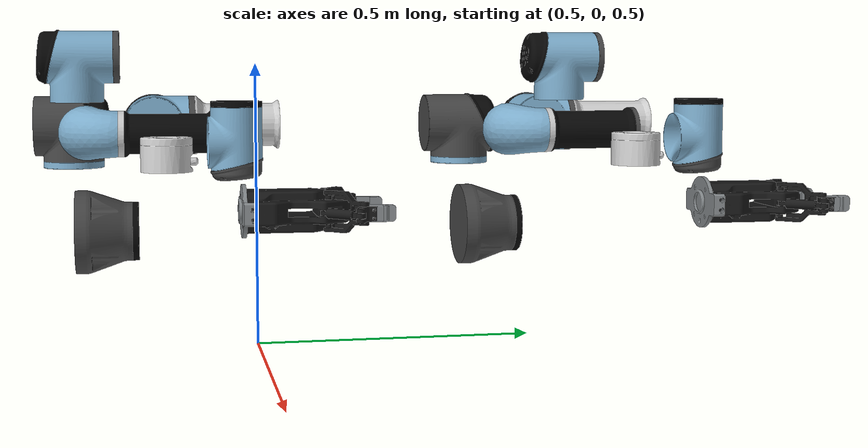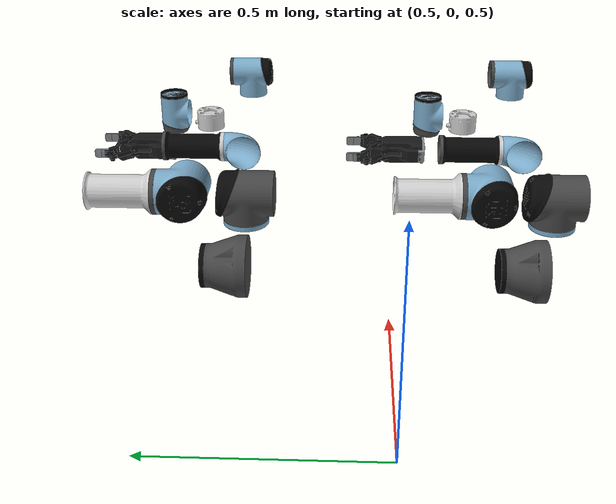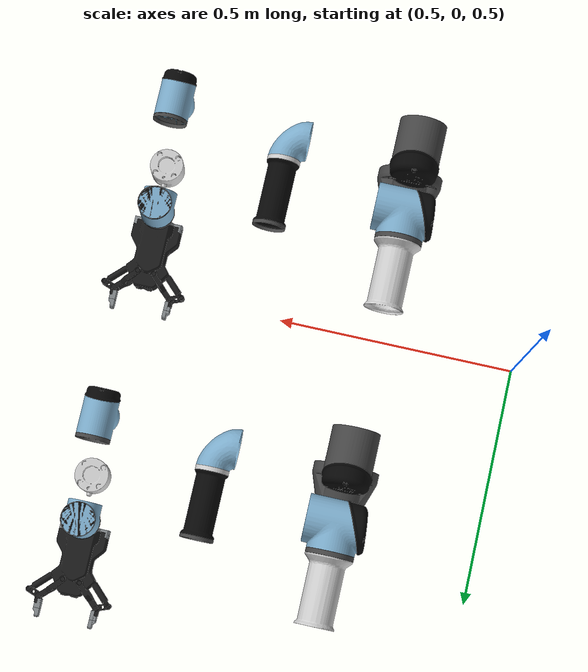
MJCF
<mujoco model="ur3e_ag95_dual">
  <compiler angle="radian" meshdir="." autolimits="true"/>

  <option integrator="implicitfast" impratio="10"/>

  <default>
    <!-- UR3E默认设置 -->
    <default class="ur3e">
      <material specular="0.5" shininess="0.25"/>
      <joint axis="0 1 0" range="-6.28319 6.28319" armature="0.1"/>
      <general gaintype="fixed" biastype="affine" ctrlrange="-6.2831 6.2831" gainprm="1000" biasprm="0 -1000 -200"/>
      <default class="size2">
        <general forcerange="-54 54"/>
      </default>
      <default class="size1">
        <default class="size1_limited">
          <joint range="-3.1415 3.1415"/>
          <general gainprm="500" biasprm="0 -500 -100" ctrlrange="-3.1415 3.1415" forcerange="-28 28"/>
        </default>
      </default>
      <default class="size0">
        <general gainprm="250" biasprm="0 -250 -50" forcerange="-9 9"/>
      </default>
      <default class="visual">
        <geom type="mesh" contype="0" conaffinity="0" group="2"/>
      </default>
      <default class="collision">
        <geom type="capsule" group="3"/>
        <default class="eef_collision">
          <geom type="cylinder"/>
        </default>
      </default>
      <site size="0.001" rgba="0.5 0.5 0.5 0.3" group="4"/>
    </default>

    <!-- AG95默认设置 -->
    <default class="ag95">
      <joint range="0 0.943"/>
      <general
        dyntype="none" gaintype="fixed"
        biastype="affine" dynprm="1 0 0"
        gainprm="10 0 0" biasprm="0 -10 -0.1"
        forcerange="-5 5" ctrlrange="0 0.943"
      />
      <default class="visual2">
        <geom group="2" type="mesh" contype="0" conaffinity="0" density="0"/>
      </default>
      <default class="collision2">
        <geom group="3" type="mesh" density="2700"/>
        <default class="pad_box_0">
          <geom solimp="0.95 0.99 0.001" solref="0.004 1" priority="1" rgba="0.45 0.45 0.45 1"/>
        </default>
        <default class="pad_box_1">
          <geom solimp="0.95 0.99 0.001" solref="0.004 1" priority="1" rgba="0.55 0.55 0.55 1"/>
        </default>
        <default class="sphere_collision">
          <geom type="sphere" size="0.0006" rgba="1 0 0 1" group="3" solimp="0.95 0.99 0.001" solref="0.004 1" priority="1" mass="1e-6"/>
        </default>
      </default>
    </default>
  </default>

  <asset>
    <!-- UR3E材质 -->
    <material class="ur3e" name="urblack" rgba="0.033 0.033 0.033 1"/>
    <material class="ur3e" name="jointgray" rgba="0.278 0.278 0.278 1"/>
    <material class="ur3e" name="linkgray" rgba="0.82 0.82 0.82 1"/>
    <material class="ur3e" name="urblue" rgba="0.49 0.678 0.8 1"/>

    <!-- AG95材质 -->
    <material name="grey" specular="0.5" shininess="0.25" rgba="0.51764705882 0.53764705882 0.54764705882 1"/>
    <material name="black" specular="0.5" shininess="0.25" rgba="0.1 0.1 0.1 1"/>

    <!-- UR3E网格 -->
    <mesh file="../ur3e/assets/base_0.obj"/>
    <mesh file="../ur3e/assets/base_1.obj"/>
    <mesh file="../ur3e/assets/shoulder_0.obj"/>
    <mesh file="../ur3e/assets/shoulder_1.obj"/>
    <mesh file="../ur3e/assets/shoulder_2.obj"/>
    <mesh file="../ur3e/assets/upperarm_0.obj"/>
    <mesh file="../ur3e/assets/upperarm_1.obj"/>
    <mesh file="../ur3e/assets/upperarm_2.obj"/>
    <mesh file="../ur3e/assets/upperarm_3.obj"/>
    <mesh file="../ur3e/assets/forearm_0.obj"/>
    <mesh file="../ur3e/assets/forearm_1.obj"/>
    <mesh file="../ur3e/assets/forearm_2.obj"/>
    <mesh file="../ur3e/assets/forearm_3.obj"/>
    <mesh file="../ur3e/assets/wrist1_0.obj"/>
    <mesh file="../ur3e/assets/wrist1_1.obj"/>
    <mesh file="../ur3e/assets/wrist1_2.obj"/>
    <mesh file="../ur3e/assets/wrist2_0.obj"/>
    <mesh file="../ur3e/assets/wrist2_1.obj"/>
    <mesh file="../ur3e/assets/wrist2_2.obj"/>
    <mesh file="../ur3e/assets/wrist3.obj"/>

    <!-- AG95网格 -->
    <mesh name="base_link" file="../ag95/meshes/base_link.stl" scale="0.001 0.001 0.001"/>
    <mesh name="gripper_body" file="../ag95/meshes/gripper_body.stl" scale="0.001 0.001 0.001"/>
    <mesh name="outer_knuckle" file="../ag95/meshes/outer_knuckle.stl" scale="0.001 0.001 0.001"/>
    <mesh name="inner_knuckle" file="../ag95/meshes/inner_knuckle.stl" scale="0.001 0.001 0.001"/>
    <mesh name="finger" file="../ag95/meshes/finger.stl" scale="0.001 0.001 0.001"/>
    <mesh name="finger_pad_0" file="../ag95/meshes/finger_pad_0.stl" scale="1 1 1"/>
    <mesh name="finger_pad_1" file="../ag95/meshes/finger_pad_1.stl" scale="1 1 1"/>
  </asset>

  <worldbody>
    <light name="spotlight" mode="targetbodycom" target="left_wrist_2_link" pos="0 -1 2"/>

    <!-- LEFT ARM -->
    <body name="left_ur3e_base" pos="0.8 0.3 0.745" quat="1 0 0 0" childclass="ur3e">
      <inertial mass="2.0" pos="0 0 0" diaginertia="0.0030531654454 0.0030531654454 0.005625"/>
      <geom mesh="base_0" material="urblack" class="visual"/>
      <geom mesh="base_1" material="jointgray" class="visual"/>

      <body name="left_shoulder_link" pos="0 0 0.163">
        <inertial mass="2.0" pos="0 0 0" diaginertia="0.008093163429399999 0.008093163429399999 0.005625"/>
        <joint name="left_shoulder_pan_joint" class="size2" axis="0 0 1"/>
        <geom mesh="shoulder_0" material="urblue" class="visual"/>
        <geom mesh="shoulder_1" material="urblack" class="visual"/>
        <geom mesh="shoulder_2" material="jointgray" class="visual"/>
        <geom class="collision" size="0.05 0.05" pos="0 0 -0.04"/>

        <body name="left_upper_arm_link" pos="0 0.12 0" quat="1 0 1 0">
          <inertial mass="3.42" pos="0 0 0.121825" diaginertia="0.021728483221103233 0.021728483221103233 0.00961875"/>
          <joint name="left_shoulder_lift_joint" class="size2"/>
          <geom mesh="upperarm_0" material="urblack" class="visual"/>
          <geom mesh="upperarm_1" material="urblue" class="visual"/>
          <geom mesh="upperarm_2" material="jointgray" class="visual"/>
          <geom mesh="upperarm_3" material="linkgray" class="visual"/>
          <geom class="collision" pos="0 -0.04 0" quat="1 1 0 0" size="0.05 0.05"/>
          <geom class="collision" size="0.04 0.1" pos="0 0 0.1"/>

          <body name="left_forearm_link" pos="0 -0.093 0.24355">
            <inertial mass="1.26" pos="0 0 0.1066" diaginertia="0.0065445675821719194 0.0065445675821719194 0.00354375"/>
            <joint name="left_elbow_joint" class="size1_limited"/>
            <geom mesh="forearm_0" material="urblue" class="visual"/>
            <geom mesh="forearm_1" material="linkgray" class="visual"/>
            <geom mesh="forearm_2" material="urblack" class="visual"/>
            <geom mesh="forearm_3" material="jointgray" class="visual"/>
            <geom class="collision" pos="0 0.06 0" quat="1 1 0 0" size="0.04 0.052"/>
            <geom class="collision" size="0.03 0.1" pos="0 0 0.1"/>

            <body name="left_wrist_1_link" pos="0 0 0.2132" quat="1 0 1 0">
              <inertial mass="0.8" pos="0 0.104 0" diaginertia="0.002084999166 0.002084999166 0.00225"/>
              <joint name="left_wrist_1_joint" class="size0"/>
              <geom mesh="wrist1_0" material="urblack" class="visual"/>
              <geom mesh="wrist1_1" material="urblue" class="visual"/>
              <geom mesh="wrist1_2" material="jointgray" class="visual"/>
              <geom class="collision" pos="0 0.03 0" quat="1 1 0 0" size="0.032 0.045"/>

              <body name="left_wrist_2_link" pos="0 0.104 0">
                <inertial mass="0.8" pos="0 0 0.1" diaginertia="0.002084999166 0.002084999166 0.00225"/>
                <joint name="left_wrist_2_joint" axis="0 0 1" class="size0"/>
                <geom mesh="wrist2_0" material="urblue" class="visual"/>
                <geom mesh="wrist2_1" material="urblack" class="visual"/>
                <geom mesh="wrist2_2" material="jointgray" class="visual"/>
                <geom class="collision" size="0.032 0.045" pos="0 0 0.025"/>
                <geom class="collision" pos="0 0.015 0.085" quat="1 1 0 0" size="0.032 0.035"/>

                <body name="left_wrist_3_link" pos="0 0 0.08535">
                  <inertial mass="0.35" pos="0 0.0771683 0" quat="1 0 0 1"
                    diaginertia="0.00013626661215999998 0.00013626661215999998 0.0001792"/>
                  <joint name="left_wrist_3_joint" class="size0"/>
                  <geom material="linkgray" mesh="wrist3" class="visual"/>

                  <!-- AG95機械手安装在UR3E末端 -->
                  <body name="left_ag95_base" pos="0 0.09 0" euler="-1.57 0 0" childclass="ag95">
                    <geom class="collision2" mesh="base_link"/>
                    <geom class="visual2" mesh="base_link" material="grey"/>
                    <geom class="collision2" mesh="gripper_body"/>
                    <geom class="visual2" mesh="gripper_body" material="black"/>

                    <!-- 左侧机械手结构 -->
                    <body name="left_left_inner_knuckle" pos="0.016 -0.0254 0.10586" quat="0.922844 0 0.385173 0">
                      <joint name="left_left_inner_knuckle_joint" pos="0 0 0" axis="0 -1 0"/>
                      <geom class="collision2" pos="-0.016 0.0254 -0.10586" mesh="inner_knuckle"/>
                      <geom class="visual2" pos="-0.016 0.0254 -0.10586" mesh="inner_knuckle" material="black"/>
                    </body>

                    <body name="left_left_outer_knuckle" pos="0.036673 -0.00875 0.098336" quat="0.924908 0 -0.380191 0">
                      <joint name="left_left_outer_knuckle_joint" pos="0 0 0" axis="0 -1 0"/>
                      <geom class="collision2" pos="-0.036673 0.00875 -0.098336" mesh="outer_knuckle"/>
                      <geom class="visual2" pos="-0.036673 0.00875 -0.098336" mesh="outer_knuckle" material="black"/>

                      <body name="left_left_finger" pos="0.055 0 0" quat="0.924908 0 0.380191 0">
                        <joint name="left_left_finger_joint" pos="0 0 0" axis="0 1 0"/>
                        <geom class="collision2" pos="-0.091673 0.00875 -0.098336" mesh="finger"/>
                        <geom class="visual2" pos="-0.091673 0.00875 -0.098336" mesh="finger" material="black"/>
                        <geom class="pad_box_0" pos="-0.091673 0.00875 -0.098336" mesh="finger_pad_0"/>
                        <geom class="visual2" pos="-0.091673 0.00875 -0.098336" mesh="finger_pad_0" material="grey"/>
                        <geom class="pad_box_1" pos="-0.091673 0.00875 -0.098336" mesh="finger_pad_1"/>
                        <geom class="visual2" pos="-0.091673 0.00875 -0.098336" mesh="finger_pad_1" material="grey"/>

                        <!-- 接触点 -->
                        <geom pos="-0.028 0 0.02" class="sphere_collision"/>
                        <geom pos="-0.028 0.0175 0.02" class="sphere_collision"/>
                        <geom pos="-0.028 0 0.032" class="sphere_collision"/>
                        <geom pos="-0.028 0.0175 0.032" class="sphere_collision"/>
                        <geom pos="-0.028 0 0.044" class="sphere_collision"/>
                        <geom pos="-0.028 0.0175 0.044" class="sphere_collision"/>
                      </body>
                    </body>

                    <!-- 右侧机械手结构 -->
                    <body name="left_right_inner_knuckle" pos="-0.016 0.0254 0.10586" quat="0 0.385173 0 -0.922844">
                      <joint name="left_right_inner_knuckle_joint" pos="0 0 0" axis="0 -1 0"/>
                      <geom class="collision2" pos="-0.016 0.0254 -0.10586" mesh="inner_knuckle"/>
                      <geom class="visual2" pos="-0.016 0.0254 -0.10586" mesh="inner_knuckle" material="black"/>
                    </body>

                    <body name="left_right_outer_knuckle" pos="-0.036673 0.00875 0.098336" quat="0 0.380191 0 0.924908">
                      <joint name="left_right_outer_knuckle_joint" pos="0 0 0" axis="0 -1 0"/>
                      <geom class="collision2" pos="-0.036673 0.00875 -0.098336" mesh="outer_knuckle"/>
                      <geom class="visual2" pos="-0.036673 0.00875 -0.098336" mesh="outer_knuckle" material="black"/>

                      <body name="left_right_finger" pos="0.055 0 0" quat="0.924908 0 0.380191 0">
                        <joint name="left_right_finger_joint" pos="0 0 0" axis="0 1 0"/>
                        <geom class="collision2" pos="-0.091673 0.00875 -0.098336" mesh="finger"/>
                        <geom class="visual2" pos="-0.091673 0.00875 -0.098336" mesh="finger" material="black"/>
                        <geom class="pad_box_0" pos="-0.091673 0.00875 -0.098336" mesh="finger_pad_0"/>
                        <geom class="visual2" pos="-0.091673 0.00875 -0.098336" mesh="finger_pad_0" material="grey"/>
                        <geom class="pad_box_1" pos="-0.091673 0.00875 -0.098336" mesh="finger_pad_1"/>
                        <geom class="visual2" pos="-0.091673 0.00875 -0.098336" mesh="finger_pad_1" material="grey"/>

                        <!-- 接触点 -->
                        <geom pos="-0.028 0 0.02" class="sphere_collision"/>
                        <geom pos="-0.028 0.0175 0.02" class="sphere_collision"/>
                        <geom pos="-0.028 0 0.032" class="sphere_collision"/>
                        <geom pos="-0.028 0.0175 0.032" class="sphere_collision"/>
                        <geom pos="-0.028 0 0.044" class="sphere_collision"/>
                        <geom pos="-0.028 0.0175 0.044" class="sphere_collision"/>
                      </body>
                    </body>
                  </body>
                </body>
              </body>
            </body>
          </body>
        </body>
      </body>
    </body>

    <!-- RIGHT ARM -->
    <body name="right_ur3e_base" pos="0.8 -0.3 0.745" quat="1 0 0 0" childclass="ur3e">
      <inertial mass="2.0" pos="0 0 0" diaginertia="0.0030531654454 0.0030531654454 0.005625"/>
      <geom mesh="base_0" material="urblack" class="visual"/>
      <geom mesh="base_1" material="jointgray" class="visual"/>

      <body name="right_shoulder_link" pos="0 0 0.163">
        <inertial mass="2.0" pos="0 0 0" diaginertia="0.008093163429399999 0.008093163429399999 0.005625"/>
        <joint name="right_shoulder_pan_joint" class="size2" axis="0 0 1"/>
        <geom mesh="shoulder_0" material="urblue" class="visual"/>
        <geom mesh="shoulder_1" material="urblack" class="visual"/>
        <geom mesh="shoulder_2" material="jointgray" class="visual"/>
        <geom class="collision" size="0.05 0.05" pos="0 0 -0.04"/>

        <body name="right_upper_arm_link" pos="0 0.12 0" quat="1 0 1 0">
          <inertial mass="3.42" pos="0 0 0.121825" diaginertia="0.021728483221103233 0.021728483221103233 0.00961875"/>
          <joint name="right_shoulder_lift_joint" class="size2"/>
          <geom mesh="upperarm_0" material="urblack" class="visual"/>
          <geom mesh="upperarm_1" material="urblue" class="visual"/>
          <geom mesh="upperarm_2" material="jointgray" class="visual"/>
          <geom mesh="upperarm_3" material="linkgray" class="visual"/>
          <geom class="collision" pos="0 -0.04 0" quat="1 1 0 0" size="0.05 0.05"/>
          <geom class="collision" size="0.04 0.1" pos="0 0 0.1"/>

          <body name="right_forearm_link" pos="0 -0.093 0.24355">
            <inertial mass="1.26" pos="0 0 0.1066" diaginertia="0.0065445675821719194 0.0065445675821719194 0.00354375"/>
            <joint name="right_elbow_joint" class="size1_limited"/>
            <geom mesh="forearm_0" material="urblue" class="visual"/>
            <geom mesh="forearm_1" material="linkgray" class="visual"/>
            <geom mesh="forearm_2" material="urblack" class="visual"/>
            <geom mesh="forearm_3" material="jointgray" class="visual"/>
            <geom class="collision" pos="0 0.06 0" quat="1 1 0 0" size="0.04 0.052"/>
            <geom class="collision" size="0.03 0.1" pos="0 0 0.1"/>

            <body name="right_wrist_1_link" pos="0 0 0.2132" quat="1 0 1 0">
              <inertial mass="0.8" pos="0 0.104 0" diaginertia="0.002084999166 0.002084999166 0.00225"/>
              <joint name="right_wrist_1_joint" class="size0"/>
              <geom mesh="wrist1_0" material="urblack" class="visual"/>
              <geom mesh="wrist1_1" material="urblue" class="visual"/>
              <geom mesh="wrist1_2" material="jointgray" class="visual"/>
              <geom class="collision" pos="0 0.03 0" quat="1 1 0 0" size="0.032 0.045"/>

              <body name="right_wrist_2_link" pos="0 0.104 0">
                <inertial mass="0.8" pos="0 0 0.1" diaginertia="0.002084999166 0.002084999166 0.00225"/>
                <joint name="right_wrist_2_joint" axis="0 0 1" class="size0"/>
                <geom mesh="wrist2_0" material="urblue" class="visual"/>
                <geom mesh="wrist2_1" material="urblack" class="visual"/>
                <geom mesh="wrist2_2" material="jointgray" class="visual"/>
                <geom class="collision" size="0.032 0.045" pos="0 0 0.025"/>
                <geom class="collision" pos="0 0.015 0.085" quat="1 1 0 0" size="0.032 0.035"/>

                <body name="right_wrist_3_link" pos="0 0 0.08535">
                  <inertial mass="0.35" pos="0 0.0771683 0" quat="1 0 0 1"
                    diaginertia="0.00013626661215999998 0.00013626661215999998 0.0001792"/>
                  <joint name="right_wrist_3_joint" class="size0"/>
                  <geom material="linkgray" mesh="wrist3" class="visual"/>

                  <!-- AG95機械手安装在UR3E末端 -->
                  <body name="right_ag95_base" pos="0 0.09 0" euler="-1.57 0 0" childclass="ag95">
                    <geom class="collision2" mesh="base_link"/>
                    <geom class="visual2" mesh="base_link" material="grey"/>
                    <geom class="collision2" mesh="gripper_body"/>
                    <geom class="visual2" mesh="gripper_body" material="black"/>

                    <!-- 左侧机械手结构 -->
                    <body name="right_left_inner_knuckle" pos="0.016 -0.0254 0.10586" quat="0.922844 0 0.385173 0">
                      <joint name="right_left_inner_knuckle_joint" pos="0 0 0" axis="0 -1 0"/>
                      <geom class="collision2" pos="-0.016 0.0254 -0.10586" mesh="inner_knuckle"/>
                      <geom class="visual2" pos="-0.016 0.0254 -0.10586" mesh="inner_knuckle" material="black"/>
                    </body>

                    <body name="right_left_outer_knuckle" pos="0.036673 -0.00875 0.098336" quat="0.924908 0 -0.380191 0">
                      <joint name="right_left_outer_knuckle_joint" pos="0 0 0" axis="0 -1 0"/>
                      <geom class="collision2" pos="-0.036673 0.00875 -0.098336" mesh="outer_knuckle"/>
                      <geom class="visual2" pos="-0.036673 0.00875 -0.098336" mesh="outer_knuckle" material="black"/>

                      <body name="right_left_finger" pos="0.055 0 0" quat="0.924908 0 0.380191 0">
                        <joint name="right_left_finger_joint" pos="0 0 0" axis="0 1 0"/>
                        <geom class="collision2" pos="-0.091673 0.00875 -0.098336" mesh="finger"/>
                        <geom class="visual2" pos="-0.091673 0.00875 -0.098336" mesh="finger" material="black"/>
                        <geom class="pad_box_0" pos="-0.091673 0.00875 -0.098336" mesh="finger_pad_0"/>
                        <geom class="visual2" pos="-0.091673 0.00875 -0.098336" mesh="finger_pad_0" material="grey"/>
                        <geom class="pad_box_1" pos="-0.091673 0.00875 -0.098336" mesh="finger_pad_1"/>
                        <geom class="visual2" pos="-0.091673 0.00875 -0.098336" mesh="finger_pad_1" material="grey"/>

                        <!-- 接触点 -->
                        <geom pos="-0.028 0 0.02" class="sphere_collision"/>
                        <geom pos="-0.028 0.0175 0.02" class="sphere_collision"/>
                        <geom pos="-0.028 0 0.032" class="sphere_collision"/>
                        <geom pos="-0.028 0.0175 0.032" class="sphere_collision"/>
                        <geom pos="-0.028 0 0.044" class="sphere_collision"/>
                        <geom pos="-0.028 0.0175 0.044" class="sphere_collision"/>
                      </body>
                    </body>

                    <!-- 右侧机械手结构 -->
                    <body name="right_right_inner_knuckle" pos="-0.016 0.0254 0.10586" quat="0 0.385173 0 -0.922844">
                      <joint name="right_right_inner_knuckle_joint" pos="0 0 0" axis="0 -1 0"/>
                      <geom class="collision2" pos="-0.016 0.0254 -0.10586" mesh="inner_knuckle"/>
                      <geom class="visual2" pos="-0.016 0.0254 -0.10586" mesh="inner_knuckle" material="black"/>
                    </body>

                    <body name="right_right_outer_knuckle" pos="-0.036673 0.00875 0.098336" quat="0 0.380191 0 0.924908">
                      <joint name="right_right_outer_knuckle_joint" pos="0 0 0" axis="0 -1 0"/>
                      <geom class="collision2" pos="-0.036673 0.00875 -0.098336" mesh="outer_knuckle"/>
                      <geom class="visual2" pos="-0.036673 0.00875 -0.098336" mesh="outer_knuckle" material="black"/>

                      <body name="right_right_finger" pos="0.055 0 0" quat="0.924908 0 0.380191 0">
                        <joint name="right_right_finger_joint" pos="0 0 0" axis="0 1 0"/>
                        <geom class="collision2" pos="-0.091673 0.00875 -0.098336" mesh="finger"/>
                        <geom class="visual2" pos="-0.091673 0.00875 -0.098336" mesh="finger" material="black"/>
                        <geom class="pad_box_0" pos="-0.091673 0.00875 -0.098336" mesh="finger_pad_0"/>
                        <geom class="visual2" pos="-0.091673 0.00875 -0.098336" mesh="finger_pad_0" material="grey"/>
                        <geom class="pad_box_1" pos="-0.091673 0.00875 -0.098336" mesh="finger_pad_1"/>
                        <geom class="visual2" pos="-0.091673 0.00875 -0.098336" mesh="finger_pad_1" material="grey"/>

                        <!-- 接触点 -->
                        <geom pos="-0.028 0 0.02" class="sphere_collision"/>
                        <geom pos="-0.028 0.0175 0.02" class="sphere_collision"/>
                        <geom pos="-0.028 0 0.032" class="sphere_collision"/>
                        <geom pos="-0.028 0.0175 0.032" class="sphere_collision"/>
                        <geom pos="-0.028 0 0.044" class="sphere_collision"/>
                        <geom pos="-0.028 0.0175 0.044" class="sphere_collision"/>
                      </body>
                    </body>
                  </body>
                </body>
              </body>
            </body>
          </body>
        </body>
      </body>
    </body>
  </worldbody>

  <!-- 碰撞排除配置 -->
  <contact>
    <!-- LEFT ARM -->
    <exclude body1="left_ag95_base" body2="left_left_inner_knuckle"/>
    <exclude body1="left_ag95_base" body2="left_left_outer_knuckle"/>
    <exclude body1="left_ag95_base" body2="left_right_inner_knuckle"/>
    <exclude body1="left_ag95_base" body2="left_right_outer_knuckle"/>
    <exclude body1="left_ag95_base" body2="left_left_finger"/>
    <exclude body1="left_ag95_base" body2="left_right_finger"/>
    <exclude body1="left_left_inner_knuckle" body2="left_left_finger"/>
    <exclude body1="left_right_inner_knuckle" body2="left_right_finger"/>

    <exclude body1="left_wrist_3_link" body2="left_ag95_base"/>
    <exclude body1="left_wrist_3_link" body2="left_left_inner_knuckle"/>
    <exclude body1="left_wrist_3_link" body2="left_right_inner_knuckle"/>
    <exclude body1="left_wrist_3_link" body2="left_left_outer_knuckle"/>
    <exclude body1="left_wrist_3_link" body2="left_right_outer_knuckle"/>

    <!-- RIGHT ARM -->
    <exclude body1="right_ag95_base" body2="right_left_inner_knuckle"/>
    <exclude body1="right_ag95_base" body2="right_left_outer_knuckle"/>
    <exclude body1="right_ag95_base" body2="right_right_inner_knuckle"/>
    <exclude body1="right_ag95_base" body2="right_right_outer_knuckle"/>
    <exclude body1="right_ag95_base" body2="right_left_finger"/>
    <exclude body1="right_ag95_base" body2="right_right_finger"/>
    <exclude body1="right_left_inner_knuckle" body2="right_left_finger"/>
    <exclude body1="right_right_inner_knuckle" body2="right_right_finger"/>

    <exclude body1="right_wrist_3_link" body2="right_ag95_base"/>
    <exclude body1="right_wrist_3_link" body2="right_left_inner_knuckle"/>
    <exclude body1="right_wrist_3_link" body2="right_right_inner_knuckle"/>
    <exclude body1="right_wrist_3_link" body2="right_left_outer_knuckle"/>
    <exclude body1="right_wrist_3_link" body2="right_right_outer_knuckle"/>
  </contact>

  <!-- AG95腱传动系统 -->
  <tendon>
    <!-- LEFT -->
    <fixed name="left_split">
      <joint joint="left_left_outer_knuckle_joint" coef="0.5"/>
      <joint joint="left_right_outer_knuckle_joint" coef="0.5"/>
    </fixed>
    <!-- RIGHT -->
    <fixed name="right_split">
      <joint joint="right_left_outer_knuckle_joint" coef="0.5"/>
      <joint joint="right_right_outer_knuckle_joint" coef="0.5"/>
    </fixed>
  </tendon>

  <!-- AG95等式约束 -->
  <equality>
    <!-- LEFT -->
    <connect anchor="-0.020673 0 0.007524" body1="left_left_finger" body2="left_left_inner_knuckle" solimp="0.95 0.99 0.001" solref="0.005 1"/>
    <connect anchor="-0.020673 0 0.007524" body1="left_right_finger" body2="left_right_inner_knuckle" solimp="0.95 0.99 0.001" solref="0.005 1"/>
    <joint joint1="left_left_outer_knuckle_joint" joint2="left_right_outer_knuckle_joint" polycoef="0 1 0 0 0" solimp="0.95 0.99 0.001" solref="0.005 1"/>

    <!-- RIGHT -->
    <connect anchor="-0.020673 0 0.007524" body1="right_left_finger" body2="right_left_inner_knuckle" solimp="0.95 0.99 0.001" solref="0.005 1"/>
    <connect anchor="-0.020673 0 0.007524" body1="right_right_finger" body2="right_right_inner_knuckle" solimp="0.95 0.99 0.001" solref="0.005 1"/>
    <joint joint1="right_left_outer_knuckle_joint" joint2="right_right_outer_knuckle_joint" polycoef="0 1 0 0 0" solimp="0.95 0.99 0.001" solref="0.005 1"/>
  </equality>

  <!-- 驱动器配置 -->
  <actuator>
    <!-- LEFT ARM -->
    <general class="size2" name="left_shoulder_pan" joint="left_shoulder_pan_joint"/>
    <general class="size2" name="left_shoulder_lift" joint="left_shoulder_lift_joint"/>
    <general class="size1_limited" name="left_elbow" joint="left_elbow_joint"/>
    <general class="size0" name="left_wrist_1" joint="left_wrist_1_joint"/>
    <general class="size0" name="left_wrist_2" joint="left_wrist_2_joint"/>
    <general class="size0" name="left_wrist_3" joint="left_wrist_3_joint"/>
    <general name="left_fingers_actuator" tendon="left_split" class="ag95"/>

    <!-- RIGHT ARM -->
    <general class="size2" name="right_shoulder_pan" joint="right_shoulder_pan_joint"/>
    <general class="size2" name="right_shoulder_lift" joint="right_shoulder_lift_joint"/>
    <general class="size1_limited" name="right_elbow" joint="right_elbow_joint"/>
    <general class="size0" name="right_wrist_1" joint="right_wrist_1_joint"/>
    <general class="size0" name="right_wrist_2" joint="right_wrist_2_joint"/>
    <general class="size0" name="right_wrist_3" joint="right_wrist_3_joint"/>
    <general name="right_fingers_actuator" tendon="right_split" class="ag95"/>
  </actuator>
</mujoco>
